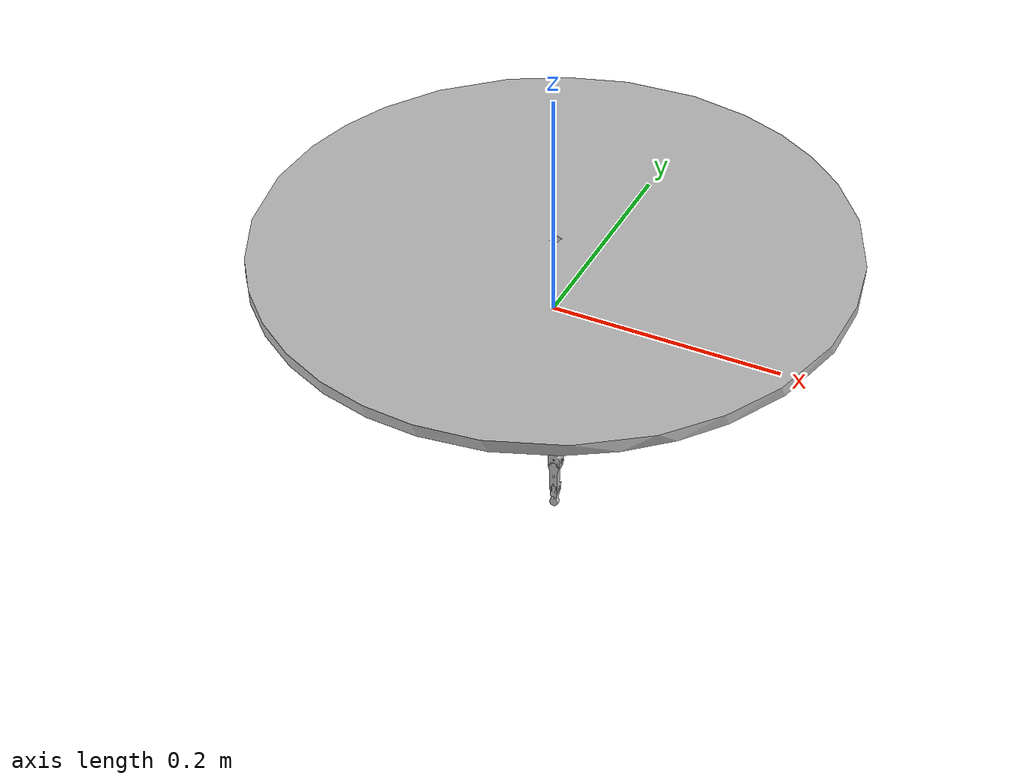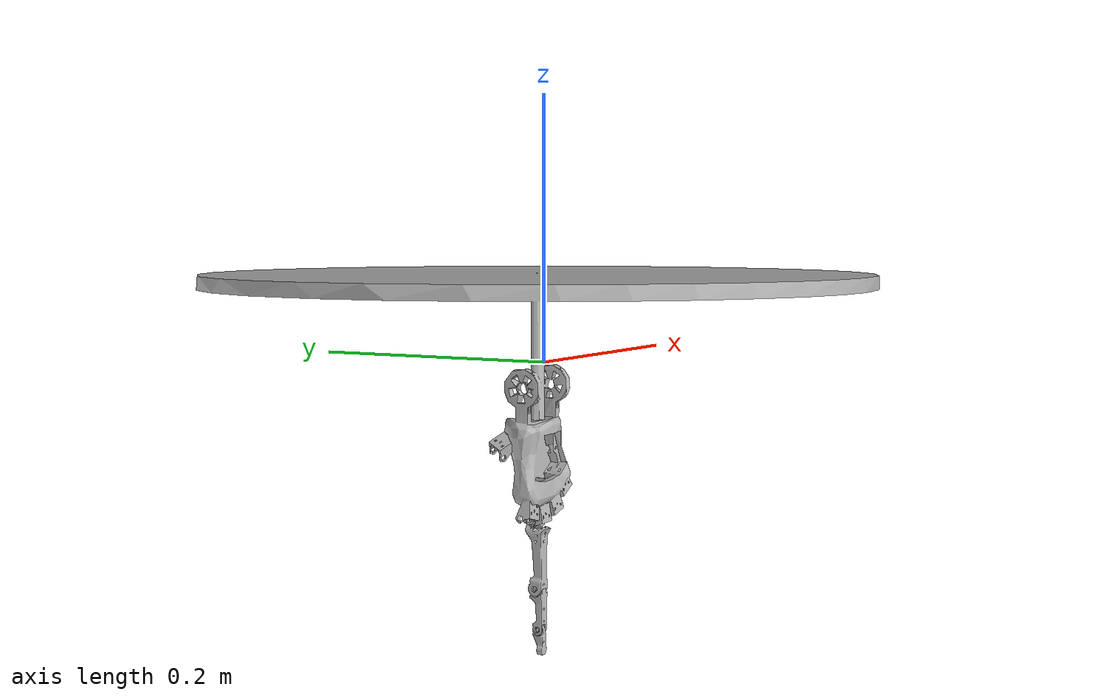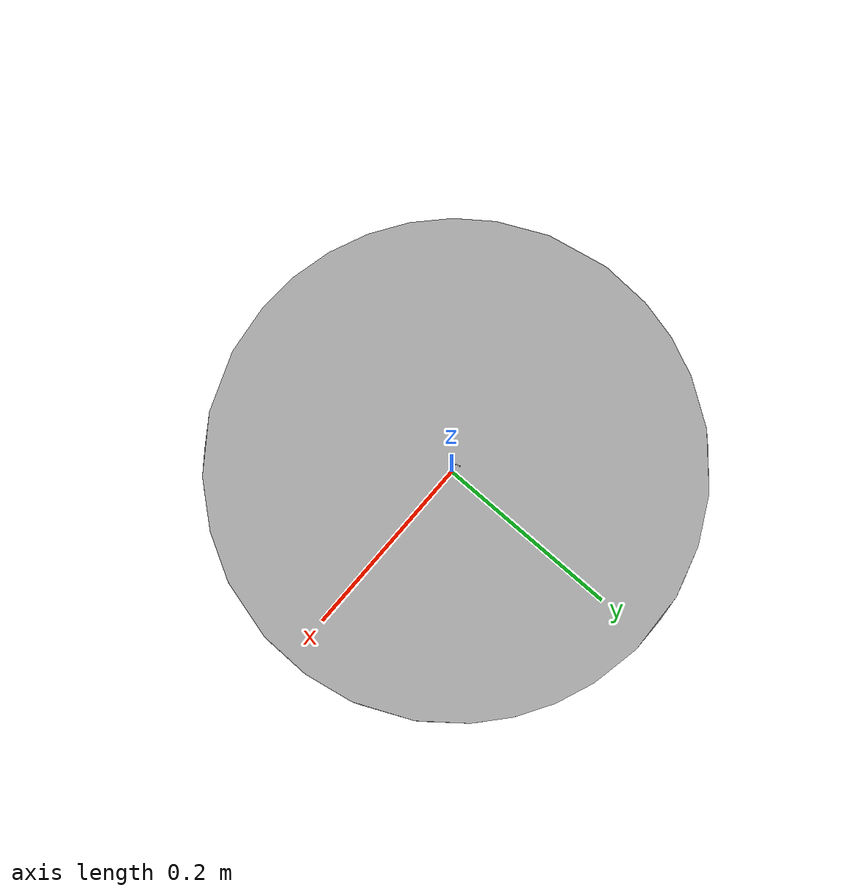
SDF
<?xml version="1.0" ?>
<sdf version="1.6">
	<model name="OnefingerWCasprsdf">
		<link name="palm">
			<self_collide>false</self_collide>
			<pose frame="">-0.0004955716943166135 0.005006540677194015 0.06136177594502402 0.0 -0.0 0.0</pose>
			<inertial>
				<pose frame="">0.0 0.0 0.0 0 0 0</pose>
				<mass>15.519964907892248</mass>
				<inertia>
					<ixx>0.300952685422027</ixx>
					<ixy>3.875011271679092e-05</ixy>
					<ixz>-0.004755703604047999</ixz>
					<iyy>0.3005845351148203</iyy>
					<iyz>0.0004837348586251351</iyz>
					<izz>0.4820856721425696</izz>
				</inertia>
			</inertial>
			<collision name="palm_collision">
				<geometry>
					<mesh>
						<uri>model://OnefingerWCasprsdf/meshes/CAD/palm.stl</uri>
						<scale>0.001 0.001 0.001</scale>
					</mesh>
				</geometry>
			</collision>
			<visual name="palm_visual">
				<geometry>
					<mesh>
						<uri>model://OnefingerWCasprsdf/meshes/CAD/palm.stl</uri>
						<scale>0.001 0.001 0.001</scale>
					</mesh>
				</geometry>
			</visual>
		</link>
		<link name="middle_limb0">
			<self_collide>false</self_collide>
			<pose frame="">8.078672351058662e-07 0.005136107528913899 -0.12054352867862637 0.0 -0.0 0.0</pose>
			<inertial>
				<pose frame="">0.0 0.0 0.0 0 0 0</pose>
				<mass>0.0004269894661254722</mass>
				<inertia>
					<ixx>6.220931215255127e-06</ixx>
					<ixy>-2.9280517172806823e-12</ixy>
					<ixz>2.640161236737293e-07</ixz>
					<iyy>6.212418826825487e-06</iyy>
					<iyz>4.165012047680546e-11</iyz>
					<izz>1.8698194242482417e-08</izz>
				</inertia>
			</inertial>
			<collision name="middle_limb0_collision">
				<geometry>
					<mesh>
						<uri>model://OnefingerWCasprsdf/meshes/CAD/middle_limb0.stl</uri>
						<scale>0.001 0.001 0.001</scale>
					</mesh>
				</geometry>
			</collision>
			<visual name="middle_limb0_visual">
				<geometry>
					<mesh>
						<uri>model://OnefingerWCasprsdf/meshes/CAD/middle_limb0.stl</uri>
						<scale>0.001 0.001 0.001</scale>
					</mesh>
				</geometry>
			</visual>
		</link>
		<link name="middle_limb1">
			<self_collide>false</self_collide>
			<pose frame="">3.1551509779459335e-08 0.004241487266738244 -0.14521496753967192 0.0 -0.0 0.0</pose>
			<inertial>
				<pose frame="">0.0 0.0 0.0 0 0 0</pose>
				<mass>0.003829477216634554</mass>
				<inertia>
					<ixx>8.179745773238127e-05</ixx>
					<ixy>-1.0101738763871992e-12</ixy>
					<ixz>2.324896654061824e-06</ixz>
					<iyy>8.172897133495305e-05</iyy>
					<iyz>1.5576496365204838e-11</iyz>
					<izz>1.4333886288753813e-07</izz>
				</inertia>
			</inertial>
			<collision name="middle_limb1_collision">
				<geometry>
					<mesh>
						<uri>model://OnefingerWCasprsdf/meshes/CAD/middle_limb1.stl</uri>
						<scale>0.001 0.001 0.001</scale>
					</mesh>
				</geometry>
			</collision>
			<visual name="middle_limb1_visual">
				<geometry>
					<mesh>
						<uri>model://OnefingerWCasprsdf/meshes/CAD/middle_limb1.stl</uri>
						<scale>0.001 0.001 0.001</scale>
					</mesh>
				</geometry>
			</visual>
		</link>
		<link name="middle_limb2">
			<self_collide>false</self_collide>
			<pose frame="">-1.4426906685347276e-07 0.0034702507302592635 -0.18496109042432443 0.0 -0.0 0.0</pose>
			<inertial>
				<pose frame="">0.0 0.0 0.0 0 0 0</pose>
				<mass>0.0016247913530675383</mass>
				<inertia>
					<ixx>5.5779881831287715e-05</ixx>
					<ixy>1.1170535485577339e-12</ixy>
					<ixz>1.0301843374132042e-06</ixz>
					<iyy>5.5759467602634794e-05</iyy>
					<iyz>-3.9783898768129506e-11</iyz>
					<izz>3.947765546601323e-08</izz>
				</inertia>
			</inertial>
			<collision name="middle_limb2_collision">
				<geometry>
					<mesh>
						<uri>model://OnefingerWCasprsdf/meshes/CAD/middle_limb2.stl</uri>
						<scale>0.001 0.001 0.001</scale>
					</mesh>
				</geometry>
			</collision>
			<visual name="middle_limb2_visual">
				<geometry>
					<mesh>
						<uri>model://OnefingerWCasprsdf/meshes/CAD/middle_limb2.stl</uri>
						<scale>0.001 0.001 0.001</scale>
					</mesh>
				</geometry>
			</visual>
		</link>
		<link name="middle_limb3">
			<self_collide>false</self_collide>
			<pose frame="">-2.702223533261596e-08 0.002735286136530422 -0.2120901544309756 0.0 -0.0 0.0</pose>
			<inertial>
				<pose frame="">0.0 0.0 0.0 0 0 0</pose>
				<mass>0.0006943748373823943</mass>
				<inertia>
					<ixx>3.1269426602180564e-05</ixx>
					<ixy>9.770606143494896e-14</ixy>
					<ixz>4.0004172461026313e-07</ixz>
					<iyy>3.126385415013476e-05</iyy>
					<iyz>-3.760132469054611e-12</iyz>
					<izz>1.003234975927051e-08</izz>
				</inertia>
			</inertial>
			<collision name="middle_limb3_collision">
				<geometry>
					<mesh>
						<uri>model://OnefingerWCasprsdf/meshes/CAD/middle_limb3.stl</uri>
						<scale>0.001 0.001 0.001</scale>
					</mesh>
				</geometry>
			</collision>
			<visual name="middle_limb3_visual">
				<geometry>
					<mesh>
						<uri>model://OnefingerWCasprsdf/meshes/CAD/middle_limb3.stl</uri>
						<scale>0.001 0.001 0.001</scale>
					</mesh>
				</geometry>
			</visual>
		</link>
		<joint name="palm_middle" type="revolute">
			<parent>palm</parent>
			<child>middle_limb0</child>
			<pose frame="">0.004999192132764886 -0.0001361075289138869 -0.0007064713213735807 0 0 0</pose>
			<axis>
				<xyz>-1.0000000000000089 9.930890339105123e-17 -1.4559772246072405e-17</xyz>
				<limit>
					<lower>-1.2217304763960306</lower>
					<upper>0.3490658503988659</upper>
				</limit>
				<use_parent_model_frame>0</use_parent_model_frame>
			</axis>
		</joint>
		<joint name="joint0_middle" type="revolute">
			<parent>middle_limb0</parent>
			<child>middle_limb1</child>
			<pose frame="">-3.155150978682333e-08 -0.0018395634780915455 0.025464967539671958 0 0 0</pose>
			<axis>
				<xyz>-1.468342181063722e-17 -0.8660254037844379 0.49999999999999933</xyz>
				<limit>
					<lower>-0.6108652381980153</lower>
					<upper>0.6108652381980153</upper>
				</limit>
				<use_parent_model_frame>0</use_parent_model_frame>
			</axis>
		</joint>
		<joint name="joint1_middle" type="revolute">
			<parent>middle_limb1</parent>
			<child>middle_limb2</child>
			<pose frame="">-0.005499855730933156 0.0015967365678485413 0.012586090424324325 0 0 0</pose>
			<axis>
				<xyz>1.0 -3.720545412927922e-18 2.292266993421628e-17</xyz>
				<limit>
					<lower>0.0</lower>
					<upper>1.9198621771937625</upper>
				</limit>
				<use_parent_model_frame>0</use_parent_model_frame>
			</axis>
		</joint>
		<joint name="joint2_middle" type="revolute">
			<parent>middle_limb2</parent>
			<child>middle_limb3</child>
			<pose frame="">-0.003999972977764673 0.0008317011615773851 0.007965404430975483 0 0 0</pose>
			<axis>
				<xyz>1.0 -3.720545412927922e-18 2.292266993421628e-17</xyz>
				<limit>
					<lower>0.0</lower>
					<upper>1.2217304763960306</upper>
				</limit>
				<use_parent_model_frame>0</use_parent_model_frame>
			</axis>
		</joint>
	</model>
</sdf>
